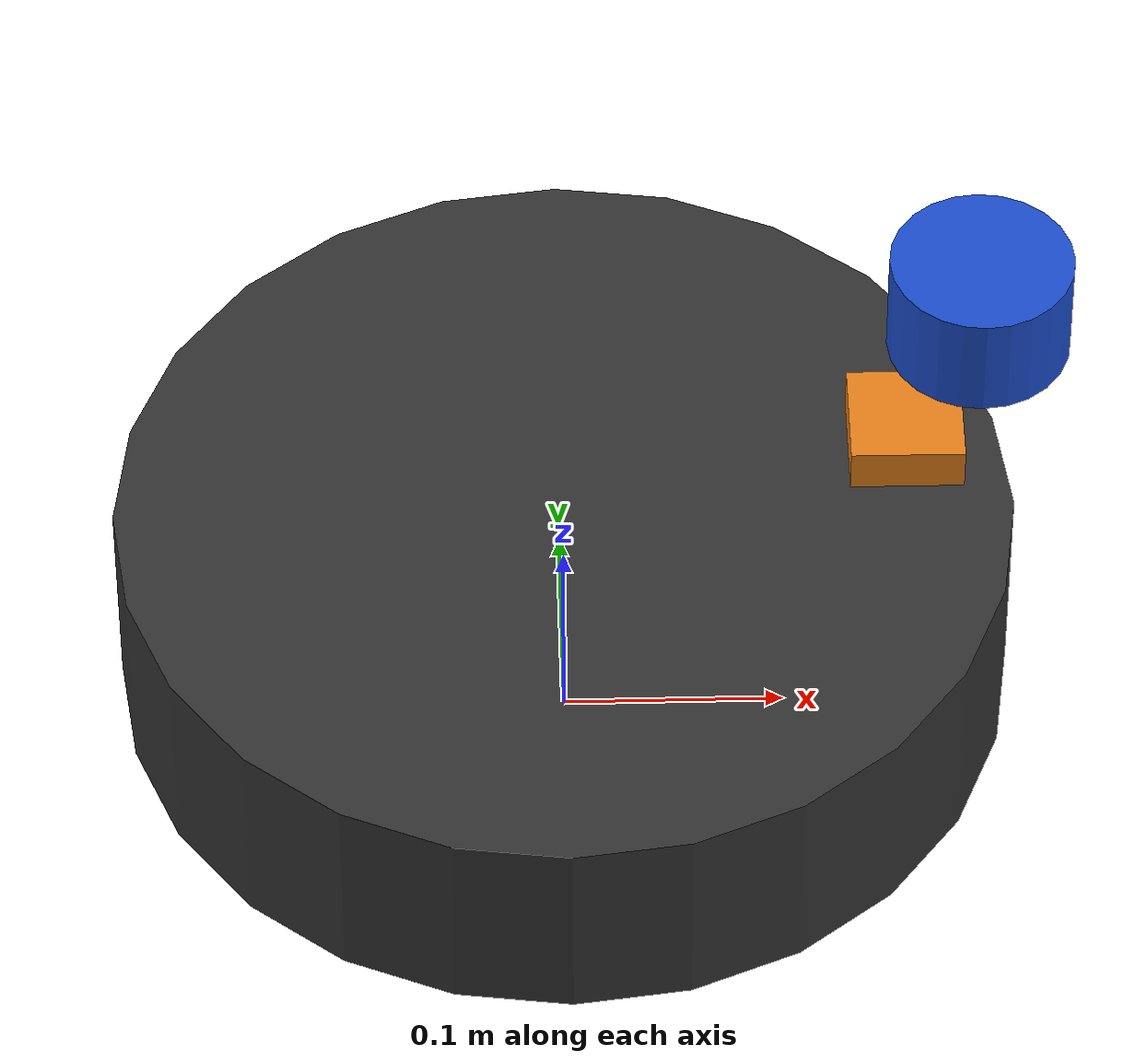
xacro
<?xml version="1.0"?>
<robot name="agv_base" xmlns:xacro="http://www.ros.org/wiki/xacro">
  <!-- Basic dimensions for a small diff-drive base -->
  <xacro:property name="base_radius" value="0.20"/>
  <xacro:property name="base_height" value="0.10"/>

  <link name="base_footprint"/>

  <link name="base_link">
    <visual>
      <origin xyz="0 0 ${base_height * 0.5}" rpy="0 0 0"/>
      <geometry>
        <cylinder radius="${base_radius}" length="${base_height}"/>
      </geometry>
      <material name="dark_grey">
        <color rgba="0.2 0.2 0.2 1.0"/>
      </material>
    </visual>
    <collision>
      <origin xyz="0 0 ${base_height * 0.5}" rpy="0 0 0"/>
      <geometry>
        <cylinder radius="${base_radius}" length="${base_height}"/>
      </geometry>
    </collision>
    <inertial>
      <mass value="15.0"/>
      <origin xyz="0 0 ${base_height * 0.5}" rpy="0 0 0"/>
      <inertia ixx="0.8" ixy="0.0" ixz="0.0" iyy="0.8" iyz="0.0" izz="1.2"/>
    </inertial>
  </link>

  <joint name="base_footprint_joint" type="fixed">
    <parent link="base_footprint"/>
    <child link="base_link"/>
    <origin xyz="0 0 0.03" rpy="0 0 0"/>
  </joint>

  <link name="lidar_link">
    <visual>
      <origin xyz="0 0 0" rpy="0 0 0"/>
      <geometry>
        <cylinder radius="0.04" length="0.05"/>
      </geometry>
      <material name="blue">
        <color rgba="0.1 0.3 0.8 1.0"/>
      </material>
    </visual>
  </link>

  <joint name="lidar_mount" type="fixed">
    <parent link="base_link"/>
    <child link="lidar_link"/>
    <origin xyz="0.18 0.0 0.23" rpy="0 0 0"/>
  </joint>

  <link name="imu_link">
    <visual>
      <origin xyz="0 0 0" rpy="0 0 0"/>
      <geometry>
        <box size="0.05 0.05 0.02"/>
      </geometry>
      <material name="orange">
        <color rgba="0.9 0.5 0.1 1.0"/>
      </material>
    </visual>
  </link>

  <joint name="imu_mount" type="fixed">
    <parent link="base_link"/>
    <child link="imu_link"/>
    <!-- IMU mounted at front center, inset 5 cm from the front edge; height unchanged -->
    <origin xyz="0.15 0.0 0.15" rpy="0 0 0"/>
  </joint>
</robot>
